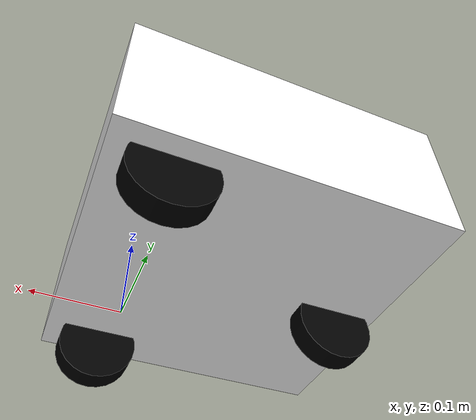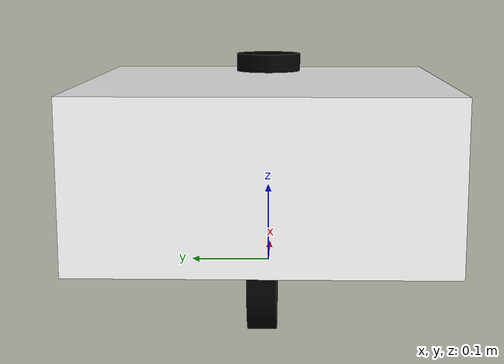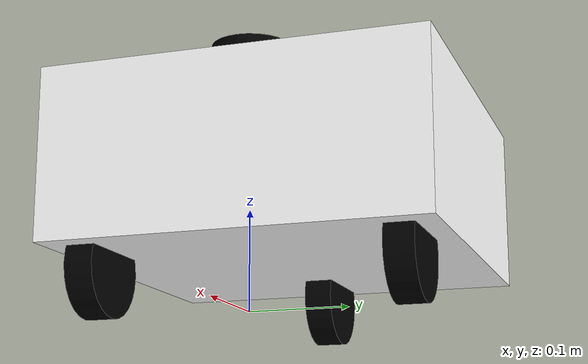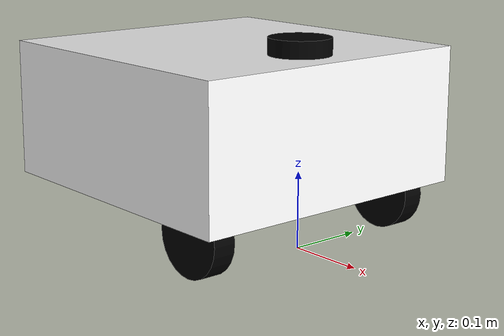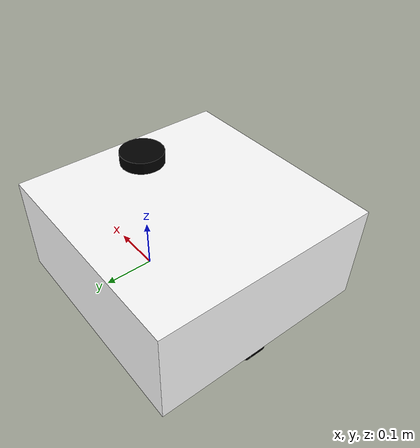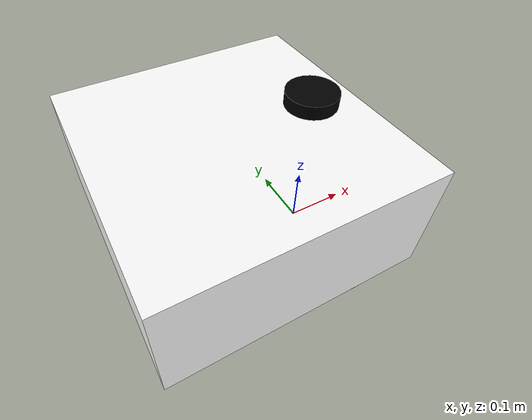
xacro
<?xml version="1.0"?>
<robot name="my_new_robot" xmlns:xacro="http://www.ros.org/wiki/xacro">

    <xacro:include filename="$(find my_new_robot)/my_robot_description/urdf/materials.xacro"/>
    <xacro:include filename="$(find my_new_robot)/my_robot_description/urdf/robot_core.xacro"/>
    <xacro:include filename="$(find my_new_robot)/my_robot_description/urdf/gazebo_control.xacro"/>

</robot>

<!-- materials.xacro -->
<robot xmlns:xacro="http://www.ros.org/wiki/xacro">

    <material name="white">
        <color rgba="1 1 1 1"/>
    </material>

    <material name="orange">
        <color rgba="1 0.3 0.1 1"/>
    </material>

    <material name="blue">
        <color rgba="0.2 0.2 1 1"/>
    </material>

    <material name="black">
        <color rgba="0 0 0 1"/>
    </material>

    <material name="green">
        <color rgba="0.0 0.8 0.0 1.0"/>
    </material>
</robot>

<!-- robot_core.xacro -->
<robot xmlns:xacro="http://www.ros.org/wiki/xacro">

    <!-- BASE_LINK -->
    <link name="base_footprint">
       <origin xyz="0.0 0.0 0.0"/>
    </link>

    <joint name="base_joint" type="fixed">
        <origin xyz="0.0 0.0 0.05"/>    <!-- tam 2 banh cach mat dat 5cm -->
        <parent link="base_footprint"/>
        <child link="base_link"/>
    </joint>

    <link name="base_link">
       <origin xyz="0.0 0.0 0.0"/>
    </link>

    <!-- CHASSIS_LINK -->

    <joint name="chassis_joint" type="fixed">
        <parent link="base_link"/>
        <child link="chassis"/>
        <origin xyz="0.07 0.0 0.02"/>    <!-- 7cm -->
    </joint>

    <link name="chassis">
        <inertial>
            <origin xyz="-0.2 0.0 0.088" rpy="0.0 0.0 0.0"/> <!-- lui 20cm nang 6.8cm -->
            <mass value="10.0"/>
            <inertia ixx="0.1" ixy="0.0" ixz="0.0" iyy="0.1" iyz="0.0" izz="0.1"/>
        </inertial>
        <visual>
            <origin xyz="-0.2 0.0 0.088" rpy="0.0 0.0 0.0"/>
            <geometry>
                <box size="0.4 0.4 0.18"/>
            </geometry>
            <material name="white"/>
        </visual>
        <collision>
            <origin xyz="-0.2 0.0 0.088" rpy="0.0 0.0 0.0"/>
            <geometry>
                <box size="0.4 0.4 0.18"/>
            </geometry>
        </collision>
    </link>

    <gazebo reference="chassis">
        <material>Gazebo/Write</material>
    </gazebo>

    <!-- LEFT WHEEL LINK -->
    <joint name="left_wheel_joint" type="continuous">
        <origin xyz="0 0.161 0" rpy="-${pi/2} 0.0 0.0"/> <!-- cach tam 16.1cm -->
        <parent link="base_link"/>
        <child link="left_wheel"/>
        <axis xyz="0.0 0.0 1.0"/>
    </joint>

    <link name="left_wheel">
        <visual>
            <origin xyz="0.0 0.0 0.0" rpy="0.0 0.0 0.0"/>
            <geometry>
                <cylinder radius="0.05" length="0.03"/>
            </geometry>
            <material name="black"/>
        </visual>
        <collision>
            <origin xyz="0.0 0.0 0.0" rpy="0.0 0.0 0.0"/>
            <geometry>
                <cylinder radius="0.05" length="0.03"/>
            </geometry>
        </collision>
        <inertial>
            <mass value="0.5"/>
            <inertia ixx="0.1" ixy="0.0" ixz="0.0" iyy="0.1" iyz="0.0" izz="0.1"/>
        </inertial>
    </link>

    <gazebo reference="left_wheel">
        <material>Gazebo/FlatBlack</material>
    </gazebo>

    <!-- RIGHT WHEEL LINK -->
    <joint name="right_wheel_joint" type="continuous">
        <origin xyz="0 -0.161 0" rpy="${pi/2} 0.0 0.0"/>
        <parent link="base_link"/>
        <child link="right_wheel"/>
        <axis xyz="0.0 0.0 -1.0"/>
    </joint>

    <link name="right_wheel">
        <visual>
            <origin xyz="0.0 0.0 0.0" rpy="0.0 0.0 0.0"/>
            <geometry>
                <cylinder radius="0.05" length="0.03"/>
            </geometry>
            <material name="black"/>
        </visual>
        <collision>
            <origin xyz="0.0 0.0 0.0" rpy="0.0 0.0 0.0"/>
            <geometry>
                <cylinder radius="0.05" length="0.03"/>
            </geometry>
        </collision>
        <inertial>
            <mass value="0.5"/>
            <inertia ixx="0.1" ixy="0.0" ixz="0.0" iyy="0.1" iyz="0.0" izz="0.1"/>
        </inertial>
    </link>

    <gazebo reference="right_wheel">
        <material>Gazebo/FlatBlack</material>
    </gazebo>

    <!-- CASTER_WHEEL -->
    <joint name="caster_wheel_joint" type="continuous">
        <parent link="base_link"/>
        <child link="caster_wheel"/>
        <origin xyz="-0.27 0.0 0.0" rpy="${pi/2} 0.0 0.0"/>        <!--dich 34 - 7 = 27cm theo truc x ke tu tam cua chassis-->
    </joint>

    <link name="caster_wheel">
        <visual>
            <geometry>
                <cylinder radius="0.05" length="0.03"/>
            </geometry>
            <material name="black"/>
        </visual>
        <collision>
            <geometry>
                <cylinder radius="0.05" length="0.03"/>
            </geometry>
        </collision>
        <inertial>
            <mass value="0.5"/>
            <inertia ixx="0.1" ixy="0.0" ixz="0.0" iyy="0.1" iyz="0.0" izz="0.1"/>
        </inertial>

    </link>

    <gazebo reference="caster_wheel">
        <material>Gazebo/FlatBlack</material>
        <mu1 value="0.001"/>
        <mu2 value="0.001"/>
    </gazebo>

    <!-- lidar -->
    <joint name="joint_scan" type="fixed">
        <origin xyz="0.0 0.0 0.2" rpy="0.0 0.0 0.0"/>
        <parent link="base_link"/>
        <child link="laser"/>
    </joint>

    <link name="laser">
        <visual>
            <geometry>
                <cylinder radius="0.04" length="0.04"/>
            </geometry>
            <material name="black"/>
        </visual>
        <collision>
            <geometry>
                <cylinder radius="0.04" length="0.04"/>
            </geometry>
        </collision>
        <inertial>
            <mass value="0.2"/>
            <inertia ixx="0.01" ixy="0.0" ixz="0.0" iyy="0.01" iyz="0.0" izz="0.01"/>
        </inertial>
    </link>

    <gazebo reference="laser">
        <material>Gazebo/FlatBlack</material>
    </gazebo>

</robot>
